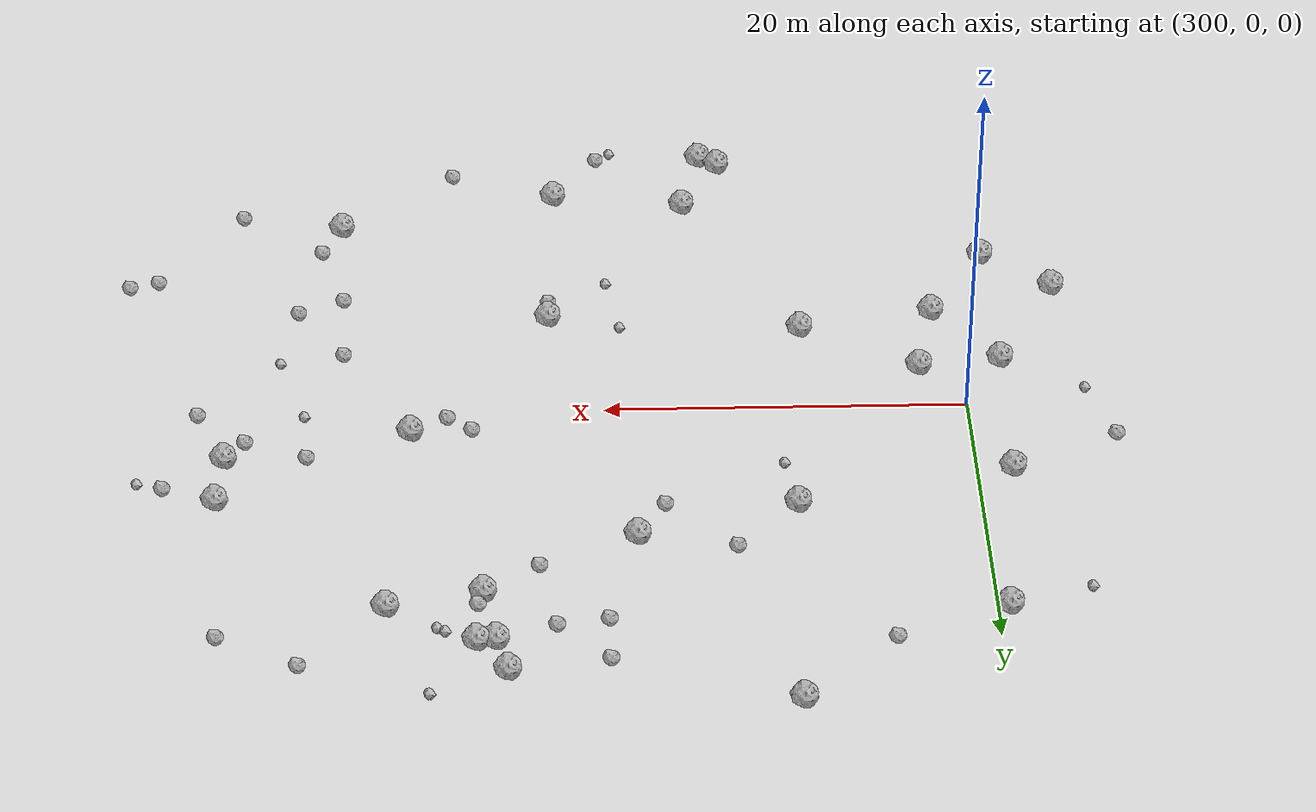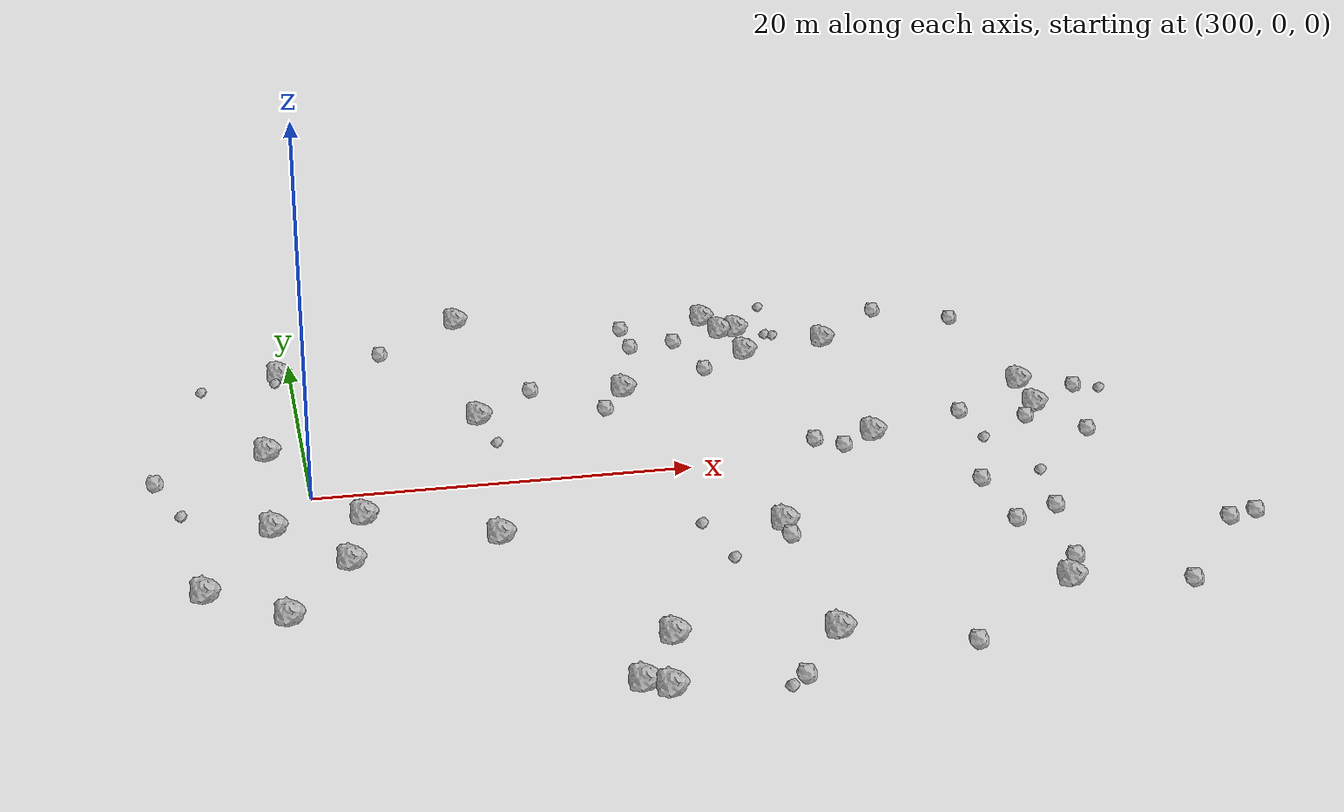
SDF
<sdf version="1.6">
 <world name="default">
  <include><uri>model://sun</uri></include>
  <model name="rock1_8_2">
   <include><uri>model://rock1</uri><pose>310.52326574859734 25.003896253175014 0.5 0 0 0</pose></include>
  </model>
  <model name="rock1_8_3">
   <include><uri>model://rock1</uri><pose>297.8639111767462 -3.9900920863932967 0.5 0 0 0</pose></include>
  </model>
  <model name="rock1_8_4">
   <include><uri>model://rock1</uri><pose>313.9095338939108 -24.68924806352785 0.5 0 0 0</pose></include>
  </model>
  <model name="rock1_8_5">
   <include><uri>model://rock1</uri><pose>299.39587027156074 17.772625001022853 0.5 0 0 0</pose></include>
  </model>
  <model name="rock1_8_6">
   <include><uri>model://rock1</uri><pose>325.47813569333863 22.422197402538707 0.5 0 0 0</pose></include>
  </model>
  <model name="rock1_8_7">
   <include><uri>model://rock1</uri><pose>323.01271423775904 -8.556213171321819 0.5 0 0 0</pose></include>
  </model>
  <model name="rock1_8_8">
   <include><uri>model://rock1</uri><pose>298.09252303023493 6.034821036464471 0.5 0 0 0</pose></include>
  </model>
  <model name="rock1_8_9">
   <include><uri>model://rock1</uri><pose>340.73382318914236 4.263099767310344 0.5 0 0 0</pose></include>
  </model>
  <model name="rock1_8_10">
   <include><uri>model://rock1</uri><pose>327.0928832463046 20.030858693801314 0.5 0 0 0</pose></include>
  </model>
  <model name="rock1_8_11">
   <include><uri>model://rock1</uri><pose>322.5414568209069 -20.774614957138755 0.5 0 0 0</pose></include>
  </model>
  <model name="rock1_8_12">
   <include><uri>model://rock1</uri><pose>308.873857248143 -7.174352983489939 0.5 0 0 0</pose></include>
  </model>
  <model name="rock1_8_13">
   <include><uri>model://rock1</uri><pose>334.8158077988506 -17.80086223313353 0.5 0 0 0</pose></include>
  </model>
  <model name="rock1_8_14">
   <include><uri>model://rock1</uri><pose>330.6612953395419 2.045236461894497 0.5 0 0 0</pose></include>
  </model>
  <model name="rock1_8_15">
   <include><uri>model://rock1</uri><pose>312.82105780391413 -23.92943146408341 0.5 0 0 0</pose></include>
  </model>
  <model name="rock1_8_16">
   <include><uri>model://rock1</uri><pose>341.05516730257733 7.957034494399814 0.5 0 0 0</pose></include>
  </model>
  <model name="rock1_8_17">
   <include><uri>model://rock1</uri><pose>315.04306804257715 -19.71378803253111 0.5 0 0 0</pose></include>
  </model>
  <model name="rock1_8_18">
   <include><uri>model://rock1</uri><pose>326.0801532458396 19.966764694805285 0.5 0 0 0</pose></include>
  </model>
  <model name="rock1_8_19">
   <include><uri>model://rock1</uri><pose>309.87730844644653 8.894482558734545 0.5 0 0 0</pose></include>
  </model>
  <model name="rock1_8_20">
   <include><uri>model://rock1</uri><pose>298.0614507270553 -14.157771667821022 0.5 0 0 0</pose></include>
  </model>
  <model name="rock1_8_21">
   <include><uri>model://rock1</uri><pose>331.79911485997513 17.183684221318302 0.5 0 0 0</pose></include>
  </model>
  <model name="rock1_8_22">
   <include><uri>model://rock1</uri><pose>302.43892460613273 -3.395470601544524 0.5 0 0 0</pose></include>
  </model>
  <model name="rock1_8_23">
   <include><uri>model://rock1</uri><pose>301.3530305348261 -8.651835164914552 0.5 0 0 0</pose></include>
  </model>
  <model name="rock1_8_24">
   <include><uri>model://rock1</uri><pose>294.30580545324284 -10.94570010918093 0.5 0 0 0</pose></include>
  </model>
  <model name="rock1_8_25">
   <include><uri>model://rock1</uri><pose>318.52641955062444 11.44135039792782 0.5 0 0 0</pose></include>
  </model>
  <model name="rock1_8_26">
   <include><uri>model://rock1</uri><pose>326.72552070713664 16.069268692475845 0.5 0 0 0</pose></include>
  </model>
  <model name="rock2_8_0">
   <include><uri>model://rock2</uri><pose>327.29262328095274 1.9440471990264925 0.3 0 0 0</pose></include>
  </model>
  <model name="rock2_8_1">
   <include><uri>model://rock2</uri><pose>336.2076194410606 21.81634392188898 0.3 0 0 0</pose></include>
  </model>
  <model name="rock2_8_2">
   <include><uri>model://rock2</uri><pose>322.9495125355956 -9.994547611307258 0.3 0 0 0</pose></include>
  </model>
  <model name="rock2_8_3">
   <include><uri>model://rock2</uri><pose>320.1845117963019 18.40517243294974 0.3 0 0 0</pose></include>
  </model>
  <model name="rock2_8_4">
   <include><uri>model://rock2</uri><pose>343.91297167287587 6.810309138841845 0.3 0 0 0</pose></include>
  </model>
  <model name="rock2_8_5">
   <include><uri>model://rock2</uri><pose>316.96624011132775 8.808584674667173 0.3 0 0 0</pose></include>
  </model>
  <model name="rock2_8_6">
   <include><uri>model://rock2</uri><pose>313.26665339389973 12.482567711378252 0.3 0 0 0</pose></include>
  </model>
  <model name="rock2_8_7">
   <include><uri>model://rock2</uri><pose>340.52317586099133 -18.945568415263217 0.3 0 0 0</pose></include>
  </model>
  <model name="rock2_8_8">
   <include><uri>model://rock2</uri><pose>323.7522864051444 13.899653172679486 0.3 0 0 0</pose></include>
  </model>
  <model name="rock2_8_9">
   <include><uri>model://rock2</uri><pose>339.6361121853158 2.8108653233386036 0.3 0 0 0</pose></include>
  </model>
  <model name="rock2_8_10">
   <include><uri>model://rock2</uri><pose>305.40877652059163 20.21379435271907 0.3 0 0 0</pose></include>
  </model>
  <model name="rock2_8_11">
   <include><uri>model://rock2</uri><pose>345.13948711222787 -12.507791858682225 0.3 0 0 0</pose></include>
  </model>
  <model name="rock2_8_12">
   <include><uri>model://rock2</uri><pose>292.13790256741225 3.125346076890139 0.3 0 0 0</pose></include>
  </model>
  <model name="rock2_8_13">
   <include><uri>model://rock2</uri><pose>335.87841305436854 -15.312101185466458 0.3 0 0 0</pose></include>
  </model>
  <model name="rock2_8_14">
   <include><uri>model://rock2</uri><pose>320.1867628263967 21.615175535645484 0.3 0 0 0</pose></include>
  </model>
  <model name="rock2_8_15">
   <include><uri>model://rock2</uri><pose>334.4347494056086 -5.194684517813851 0.3 0 0 0</pose></include>
  </model>
  <model name="rock2_8_16">
   <include><uri>model://rock2</uri><pose>346.73957333119324 -12.033912792410963 0.3 0 0 0</pose></include>
  </model>
  <model name="rock2_8_17">
   <include><uri>model://rock2</uri><pose>326.9908755652592 17.059971871271692 0.3 0 0 0</pose></include>
  </model>
  <model name="rock2_8_18">
   <include><uri>model://rock2</uri><pose>319.9519889495676 -24.58910432281254 0.3 0 0 0</pose></include>
  </model>
  <model name="rock2_8_19">
   <include><uri>model://rock2</uri><pose>322.90314049051386 18.817927579860005 0.3 0 0 0</pose></include>
  </model>
  <model name="rock2_8_20">
   <include><uri>model://rock2</uri><pose>340.49173788183737 19.453553659012016 0.3 0 0 0</pose></include>
  </model>
  <model name="rock2_8_21">
   <include><uri>model://rock2</uri><pose>336.24555352764116 4.248428562273972 0.3 0 0 0</pose></include>
  </model>
  <model name="rock2_8_22">
   <include><uri>model://rock2</uri><pose>328.39313639422994 -23.01827700222504 0.3 0 0 0</pose></include>
  </model>
  <model name="rock2_8_23">
   <include><uri>model://rock2</uri><pose>328.63576335397397 0.8244576471558283 0.3 0 0 0</pose></include>
  </model>
  <model name="rock2_8_24">
   <include><uri>model://rock2</uri><pose>334.5533707882855 -10.470115918429528 0.3 0 0 0</pose></include>
  </model>
  <model name="rock2_8_25">
   <include><uri>model://rock2</uri><pose>342.312063481428 0.28351560796131636 0.3 0 0 0</pose></include>
  </model>
  <model name="rock2_8_26">
   <include><uri>model://rock2</uri><pose>337.0501144543466 -9.277512785537755 0.3 0 0 0</pose></include>
  </model>
  <model name="rock3_8_0">
   <include><uri>model://rock3</uri><pose>328.6398297611428 19.106688125626306 0.2 0 0 0</pose></include>
  </model>
  <model name="rock3_8_1">
   <include><uri>model://rock3</uri><pose>337.89444167088595 -4.608835448498208 0.2 0 0 0</pose></include>
  </model>
  <model name="rock3_8_2">
   <include><uri>model://rock3</uri><pose>319.0942287669423 -25.41640930226452 0.2 0 0 0</pose></include>
  </model>
  <model name="rock3_8_3">
   <include><uri>model://rock3</uri><pose>319.6369457147314 -11.9239923627668 0.2 0 0 0</pose></include>
  </model>
  <model name="rock3_8_4">
   <include><uri>model://rock3</uri><pose>294.8688509588778 16.238739237782724 0.2 0 0 0</pose></include>
  </model>
  <model name="rock3_8_5">
   <include><uri>model://rock3</uri><pose>310.3482243455315 5.209099452153282 0.2 0 0 0</pose></include>
  </model>
  <model name="rock3_8_6">
   <include><uri>model://rock3</uri><pose>329.41804263775146 24.07182396368364 0.2 0 0 0</pose></include>
  </model>
  <model name="rock3_8_7">
   <include><uri>model://rock3</uri><pose>345.2745510481867 6.239065289760866 0.2 0 0 0</pose></include>
  </model>
  <model name="rock3_8_8">
   <include><uri>model://rock3</uri><pose>336.43185940507834 0.3941867507926595 0.2 0 0 0</pose></include>
  </model>
  <model name="rock3_8_9">
   <include><uri>model://rock3</uri><pose>329.05644447588105 18.832293165435125 0.2 0 0 0</pose></include>
  </model>
  <model name="rock3_8_10">
   <include><uri>model://rock3</uri><pose>318.9439109346955 -7.623783222852868 0.2 0 0 0</pose></include>
  </model>
  <model name="rock3_8_11">
   <include><uri>model://rock3</uri><pose>293.364439586487 -1.275764811822274 0.2 0 0 0</pose></include>
  </model>
  <model name="rock3_8_12">
   <include><uri>model://rock3</uri><pose>299.0668439979689 16.832754285795637 0.2 0 0 0</pose></include>
  </model>
 </world>
</sdf>
